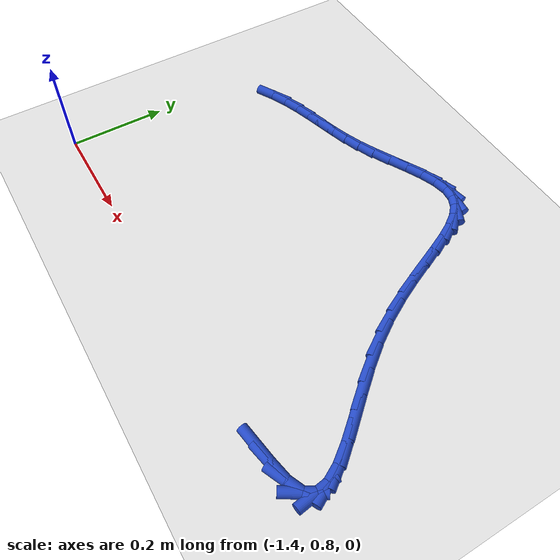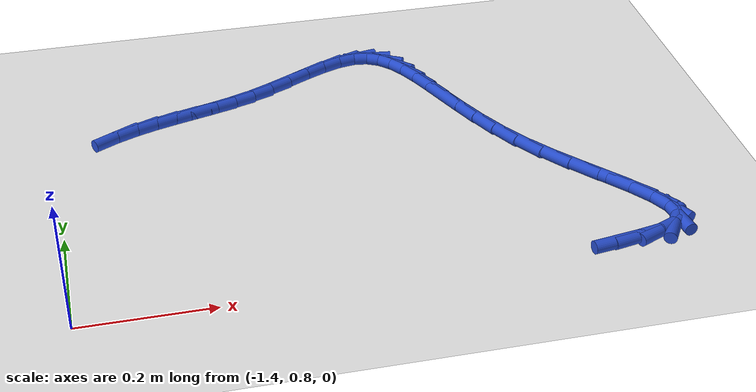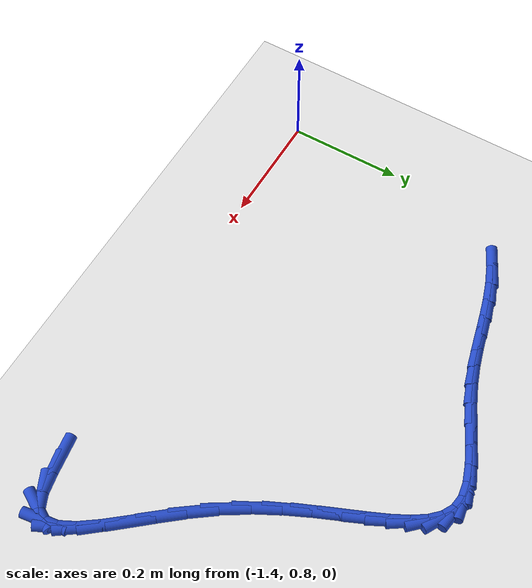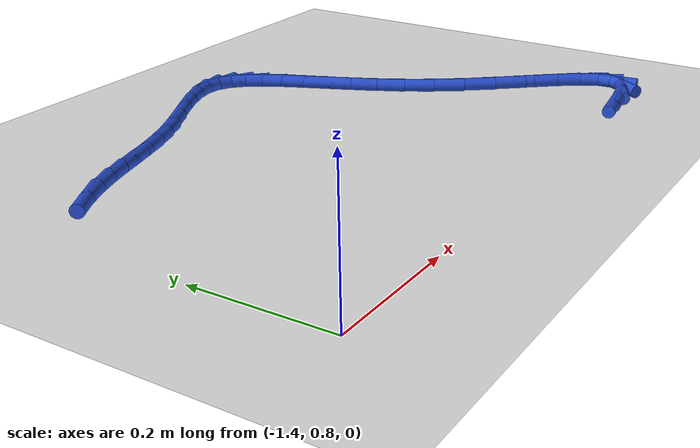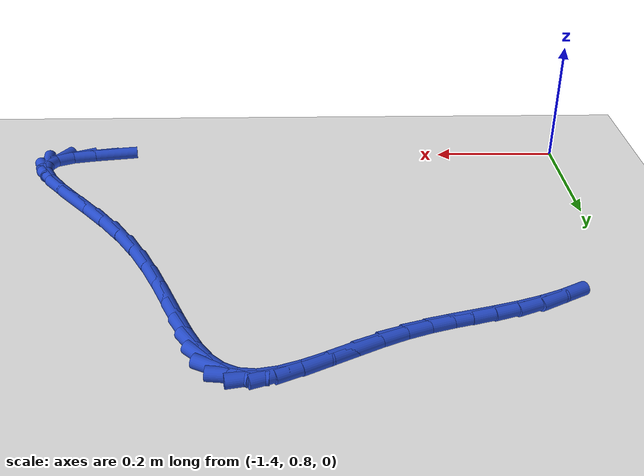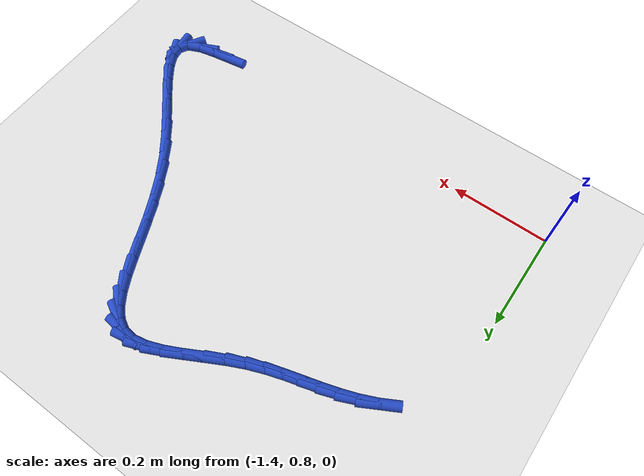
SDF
<sdf version="1.6">
 <world name="default">
  <model name="ground_plane">
   <static>1</static>
   <link name="link">
    <collision name="collision">
     <geometry><plane><normal>0 0 1</normal><size>100 100</size></plane></geometry>
     <surface><friction><ode><mu>100</mu><mu2>50</mu2></ode></friction></surface>
    </collision>
    <visual name="visual">
     <cast_shadows>0</cast_shadows>
     <geometry><plane><normal>0 0 1</normal><size>100 100</size></plane></geometry>
     <material>
      <script><uri>file://media/materials/scripts/gazebo.material</uri><name>Gazebo/WhiteGlow</name></script>
     </material>
    </visual>
   </link>
  </model>
  <model name="line">
   <link name="link_33">
    <pose>-0.6274975970471104 0.8076087048541392 0.01 0 1.57 0.15230203504884007</pose>
    <collision name="collision">
     <geometry><cylinder><radius>0.01</radius><length>0.08</length></cylinder></geometry>
    </collision>
    <visual name="visual">
     <material>
      <script><name>Gazebo/Blue</name><uri>file://media/materials/scripts/gazebo.material</uri></script>
     </material>
     <geometry><cylinder><radius>0.01</radius><length>0.08</length></cylinder></geometry>
    </visual>
   </link>
   <link name="link_34">
    <pose>-0.5961950611726069 0.8124133517301196 0.01 0 1.57 0.19830524384770448</pose>
    <collision name="collision">
     <geometry><cylinder><radius>0.01</radius><length>0.08</length></cylinder></geometry>
    </collision>
    <visual name="visual">
     <material>
      <script><name>Gazebo/Blue</name><uri>file://media/materials/scripts/gazebo.material</uri></script>
     </material>
     <geometry><cylinder><radius>0.01</radius><length>0.08</length></cylinder></geometry>
    </visual>
   </link>
   <link name="link_35">
    <pose>-0.5591647422391702 0.8198544552255956 0.01 0 1.57 0.42213728435637043</pose>
    <collision name="collision">
     <geometry><cylinder><radius>0.01</radius><length>0.08</length></cylinder></geometry>
    </collision>
    <visual name="visual">
     <material>
      <script><name>Gazebo/Blue</name><uri>file://media/materials/scripts/gazebo.material</uri></script>
     </material>
     <geometry><cylinder><radius>0.01</radius><length>0.08</length></cylinder></geometry>
    </visual>
   </link>
   <link name="link_36">
    <pose>-0.531856524955483 0.8321196274092257 0.01 0 1.57 1.0169095133444517</pose>
    <collision name="collision">
     <geometry><cylinder><radius>0.01</radius><length>0.08</length></cylinder></geometry>
    </collision>
    <visual name="visual">
     <material>
      <script><name>Gazebo/Blue</name><uri>file://media/materials/scripts/gazebo.material</uri></script>
     </material>
     <geometry><cylinder><radius>0.01</radius><length>0.08</length></cylinder></geometry>
    </visual>
   </link>
   <link name="link_37">
    <pose>-0.5207856084372138 0.8500202375938648 0.01 0 1.57 -1.4468187485999842</pose>
    <collision name="collision">
     <geometry><cylinder><radius>0.01</radius><length>0.08</length></cylinder></geometry>
    </collision>
    <visual name="visual">
     <material>
      <script><name>Gazebo/Blue</name><uri>file://media/materials/scripts/gazebo.material</uri></script>
     </material>
     <geometry><cylinder><radius>0.01</radius><length>0.08</length></cylinder></geometry>
    </visual>
   </link>
   <link name="link_38">
    <pose>-0.5236504663556029 0.8730095946627591 0.01 0 1.57 -1.095914336050709</pose>
    <collision name="collision">
     <geometry><cylinder><radius>0.01</radius><length>0.08</length></cylinder></geometry>
    </collision>
    <visual name="visual">
     <material>
      <script><name>Gazebo/Blue</name><uri>file://media/materials/scripts/gazebo.material</uri></script>
     </material>
     <geometry><cylinder><radius>0.01</radius><length>0.08</length></cylinder></geometry>
    </visual>
   </link>
   <link name="link_39">
    <pose>-0.5377753619319126 0.9004833670057931 0.01 0 1.57 -0.9439555136868737</pose>
    <collision name="collision">
     <geometry><cylinder><radius>0.01</radius><length>0.08</length></cylinder></geometry>
    </collision>
    <visual name="visual">
     <material>
      <script><name>Gazebo/Blue</name><uri>file://media/materials/scripts/gazebo.material</uri></script>
     </material>
     <geometry><cylinder><radius>0.01</radius><length>0.08</length></cylinder></geometry>
    </visual>
   </link>
   <link name="link_40">
    <pose>-0.5604845583874049 0.9318372230128507 0.01 0 1.57 -0.8801663626201262</pose>
    <collision name="collision">
     <geometry><cylinder><radius>0.01</radius><length>0.08</length></cylinder></geometry>
    </collision>
    <visual name="visual">
     <material>
      <script><name>Gazebo/Blue</name><uri>file://media/materials/scripts/gazebo.material</uri></script>
     </material>
     <geometry><cylinder><radius>0.01</radius><length>0.08</length></cylinder></geometry>
    </visual>
   </link>
   <link name="link_41">
    <pose>-0.5891023189433426 0.9664668310738164 0.01 0 1.57 -0.8640542533962889</pose>
    <collision name="collision">
     <geometry><cylinder><radius>0.01</radius><length>0.08</length></cylinder></geometry>
    </collision>
    <visual name="visual">
     <material>
      <script><name>Gazebo/Blue</name><uri>file://media/materials/scripts/gazebo.material</uri></script>
     </material>
     <geometry><cylinder><radius>0.01</radius><length>0.08</length></cylinder></geometry>
    </visual>
   </link>
   <link name="link_42">
    <pose>-0.6209529068209878 1.0037678595785737 0.01 0 1.57 -0.8820706175119707</pose>
    <collision name="collision">
     <geometry><cylinder><radius>0.01</radius><length>0.08</length></cylinder></geometry>
    </collision>
    <visual name="visual">
     <material>
      <script><name>Gazebo/Blue</name><uri>file://media/materials/scripts/gazebo.material</uri></script>
     </material>
     <geometry><cylinder><radius>0.01</radius><length>0.08</length></cylinder></geometry>
    </visual>
   </link>
   <link name="link_43">
    <pose>-0.6533605852416028 1.0431359769170072 0.01 0 1.57 -0.932552775636398</pose>
    <collision name="collision">
     <geometry><cylinder><radius>0.01</radius><length>0.08</length></cylinder></geometry>
    </collision>
    <visual name="visual">
     <material>
      <script><name>Gazebo/Blue</name><uri>file://media/materials/scripts/gazebo.material</uri></script>
     </material>
     <geometry><cylinder><radius>0.01</radius><length>0.08</length></cylinder></geometry>
    </visual>
   </link>
   <link name="link_44">
    <pose>-0.6836496318088999 1.0839668504136462 0.01 0 1.57 -1.0104647603875268</pose>
    <collision name="collision">
     <geometry><cylinder><radius>0.01</radius><length>0.08</length></cylinder></geometry>
    </collision>
    <visual name="visual">
     <material>
      <script><name>Gazebo/Blue</name><uri>file://media/materials/scripts/gazebo.material</uri></script>
     </material>
     <geometry><cylinder><radius>0.01</radius><length>0.08</length></cylinder></geometry>
    </visual>
   </link>
   <link name="link_45">
    <pose>-0.7097765928634499 1.1256093131634963 0.01 0 1.57 -1.0801747191157425</pose>
    <collision name="collision">
     <geometry><cylinder><radius>0.01</radius><length>0.08</length></cylinder></geometry>
    </collision>
    <visual name="visual">
     <material>
      <script><name>Gazebo/Blue</name><uri>file://media/materials/scripts/gazebo.material</uri></script>
     </material>
     <geometry><cylinder><radius>0.01</radius><length>0.08</length></cylinder></geometry>
    </visual>
   </link>
   <link name="link_46">
    <pose>-0.7320154467210744 1.1672405384360778 0.01 0 1.57 -1.1314485764993383</pose>
    <collision name="collision">
     <geometry><cylinder><radius>0.01</radius><length>0.08</length></cylinder></geometry>
    </collision>
    <visual name="visual">
     <material>
      <script><name>Gazebo/Blue</name><uri>file://media/materials/scripts/gazebo.material</uri></script>
     </material>
     <geometry><cylinder><radius>0.01</radius><length>0.08</length></cylinder></geometry>
    </visual>
   </link>
   <link name="link_47">
    <pose>-0.7511709789504042 1.2079983808579642 0.01 0 1.57 -1.162593641508173</pose>
    <collision name="collision">
     <geometry><cylinder><radius>0.01</radius><length>0.08</length></cylinder></geometry>
    </collision>
    <visual name="visual">
     <material>
      <script><name>Gazebo/Blue</name><uri>file://media/materials/scripts/gazebo.material</uri></script>
     </material>
     <geometry><cylinder><radius>0.01</radius><length>0.08</length></cylinder></geometry>
    </visual>
   </link>
   <link name="link_48">
    <pose>-0.7680479751200701 1.2470206950557308 0.01 0 1.57 -1.1707228555279066</pose>
    <collision name="collision">
     <geometry><cylinder><radius>0.01</radius><length>0.08</length></cylinder></geometry>
    </collision>
    <visual name="visual">
     <material>
      <script><name>Gazebo/Blue</name><uri>file://media/materials/scripts/gazebo.material</uri></script>
     </material>
     <geometry><cylinder><radius>0.01</radius><length>0.08</length></cylinder></geometry>
    </visual>
   </link>
   <link name="link_49">
    <pose>-0.7834512207987024 1.2834453356559512 0.01 0 1.57 -1.150465146954721</pose>
    <collision name="collision">
     <geometry><cylinder><radius>0.01</radius><length>0.08</length></cylinder></geometry>
    </collision>
    <visual name="visual">
     <material>
      <script><name>Gazebo/Blue</name><uri>file://media/materials/scripts/gazebo.material</uri></script>
     </material>
     <geometry><cylinder><radius>0.01</radius><length>0.08</length></cylinder></geometry>
    </visual>
   </link>
   <link name="link_50">
    <pose>-0.7981855015549317 1.3164101572851996 0.01 0 1.57 -1.091941891874106</pose>
    <collision name="collision">
     <geometry><cylinder><radius>0.01</radius><length>0.08</length></cylinder></geometry>
    </collision>
    <visual name="visual">
     <material>
      <script><name>Gazebo/Blue</name><uri>file://media/materials/scripts/gazebo.material</uri></script>
     </material>
     <geometry><cylinder><radius>0.01</radius><length>0.08</length></cylinder></geometry>
    </visual>
   </link>
   <link name="link_51">
    <pose>-0.813055602957389 1.345053014570051 0.01 0 1.57 -0.9777482804261196</pose>
    <collision name="collision">
     <geometry><cylinder><radius>0.01</radius><length>0.08</length></cylinder></geometry>
    </collision>
    <visual name="visual">
     <material>
      <script><name>Gazebo/Blue</name><uri>file://media/materials/scripts/gazebo.material</uri></script>
     </material>
     <geometry><cylinder><radius>0.01</radius><length>0.08</length></cylinder></geometry>
    </visual>
   </link>
   <link name="link_52">
    <pose>-0.8288663105747046 1.3685117621370786 0.01 0 1.57 -0.7812914461977593</pose>
    <collision name="collision">
     <geometry><cylinder><radius>0.01</radius><length>0.08</length></cylinder></geometry>
    </collision>
    <visual name="visual">
     <material>
      <script><name>Gazebo/Blue</name><uri>file://media/materials/scripts/gazebo.material</uri></script>
     </material>
     <geometry><cylinder><radius>0.01</radius><length>0.08</length></cylinder></geometry>
    </visual>
   </link>
   <link name="link_53">
    <pose>-0.8464224099755095 1.3859242546128578 0.01 0 1.57 -0.4814289942595881</pose>
    <collision name="collision">
     <geometry><cylinder><radius>0.01</radius><length>0.08</length></cylinder></geometry>
    </collision>
    <visual name="visual">
     <material>
      <script><name>Gazebo/Blue</name><uri>file://media/materials/scripts/gazebo.material</uri></script>
     </material>
     <geometry><cylinder><radius>0.01</radius><length>0.08</length></cylinder></geometry>
    </visual>
   </link>
   <link name="link_54">
    <pose>-0.8665286867284341 1.3964283466239622 0.01 0 1.57 -0.11603698721816989</pose>
    <collision name="collision">
     <geometry><cylinder><radius>0.01</radius><length>0.08</length></cylinder></geometry>
    </collision>
    <visual name="visual">
     <material>
      <script><name>Gazebo/Blue</name><uri>file://media/materials/scripts/gazebo.material</uri></script>
     </material>
     <geometry><cylinder><radius>0.01</radius><length>0.08</length></cylinder></geometry>
    </visual>
   </link>
   <link name="link_55">
    <pose>-0.889989327332415 1.399162933063862 0.01 0 1.57 0.18880216271722802</pose>
    <collision name="collision">
     <geometry><cylinder><radius>0.01</radius><length>0.08</length></cylinder></geometry>
    </collision>
    <visual name="visual">
     <material>
      <script><name>Gazebo/Blue</name><uri>file://media/materials/scripts/gazebo.material</uri></script>
     </material>
     <geometry><cylinder><radius>0.01</radius><length>0.08</length></cylinder></geometry>
    </visual>
   </link>
   <link name="link_56">
    <pose>-0.9172082284286742 1.3939620003850794 0.01 0 1.57 0.36009215054816684</pose>
    <collision name="collision">
     <geometry><cylinder><radius>0.01</radius><length>0.08</length></cylinder></geometry>
    </collision>
    <visual name="visual">
     <material>
      <script><name>Gazebo/Blue</name><uri>file://media/materials/scripts/gazebo.material</uri></script>
     </material>
     <geometry><cylinder><radius>0.01</radius><length>0.08</length></cylinder></geometry>
    </visual>
   </link>
   <link name="link_57">
    <pose>-0.947495694794874 1.382558525131339 0.01 0 1.57 0.4465359171212403</pose>
    <collision name="collision">
     <geometry><cylinder><radius>0.01</radius><length>0.08</length></cylinder></geometry>
    </collision>
    <visual name="visual">
     <material>
      <script><name>Gazebo/Blue</name><uri>file://media/materials/scripts/gazebo.material</uri></script>
     </material>
     <geometry><cylinder><radius>0.01</radius><length>0.08</length></cylinder></geometry>
    </visual>
   </link>
   <link name="link_58">
    <pose>-0.9799769818239045 1.3670068166577853 0.01 0 1.57 0.481135154921002</pose>
    <collision name="collision">
     <geometry><cylinder><radius>0.01</radius><length>0.08</length></cylinder></geometry>
    </collision>
    <visual name="visual">
     <material>
      <script><name>Gazebo/Blue</name><uri>file://media/materials/scripts/gazebo.material</uri></script>
     </material>
     <geometry><cylinder><radius>0.01</radius><length>0.08</length></cylinder></geometry>
    </visual>
   </link>
   <link name="link_59">
    <pose>-1.013777344908657 1.3493611843195648 0.01 0 1.57 0.47671102504164</pose>
    <collision name="collision">
     <geometry><cylinder><radius>0.01</radius><length>0.08</length></cylinder></geometry>
    </collision>
    <visual name="visual">
     <material>
      <script><name>Gazebo/Blue</name><uri>file://media/materials/scripts/gazebo.material</uri></script>
     </material>
     <geometry><cylinder><radius>0.01</radius><length>0.08</length></cylinder></geometry>
    </visual>
   </link>
   <link name="link_60">
    <pose>-1.0480220394420212 1.3316759374718221 0.01 0 1.57 0.43407448732028986</pose>
    <collision name="collision">
     <geometry><cylinder><radius>0.01</radius><length>0.08</length></cylinder></geometry>
    </collision>
    <visual name="visual">
     <material>
      <script><name>Gazebo/Blue</name><uri>file://media/materials/scripts/gazebo.material</uri></script>
     </material>
     <geometry><cylinder><radius>0.01</radius><length>0.08</length></cylinder></geometry>
    </visual>
   </link>
   <link name="link_61">
    <pose>-1.0818383477080278 1.315999989730625 0.01 0 1.57 0.364332486926034</pose>
    <collision name="collision">
     <geometry><cylinder><radius>0.01</radius><length>0.08</length></cylinder></geometry>
    </collision>
    <visual name="visual">
     <material>
      <script><name>Gazebo/Blue</name><uri>file://media/materials/scripts/gazebo.material</uri></script>
     </material>
     <geometry><cylinder><radius>0.01</radius><length>0.08</length></cylinder></geometry>
    </visual>
   </link>
   <link name="link_62">
    <pose>-1.1146965028481075 1.3034692933261747 0.01 0 1.57 0.30722305614795414</pose>
    <collision name="collision">
     <geometry><cylinder><radius>0.01</radius><length>0.08</length></cylinder></geometry>
    </collision>
    <visual name="visual">
     <material>
      <script><name>Gazebo/Blue</name><uri>file://media/materials/scripts/gazebo.material</uri></script>
     </material>
     <geometry><cylinder><radius>0.01</radius><length>0.08</length></cylinder></geometry>
    </visual>
   </link>
   <link name="link_63">
    <pose>-1.1467931468735109 1.2932860445753274 0.01 0 1.57 0.27374645443688667</pose>
    <collision name="collision">
     <geometry><cylinder><radius>0.01</radius><length>0.08</length></cylinder></geometry>
    </collision>
    <visual name="visual">
     <material>
      <script><name>Gazebo/Blue</name><uri>file://media/materials/scripts/gazebo.material</uri></script>
     </material>
     <geometry><cylinder><radius>0.01</radius><length>0.08</length></cylinder></geometry>
    </visual>
   </link>
   <link name="link_64">
    <pose>-1.1784174702246566 1.2844060688052383 0.01 0 1.57 0.267613499157372</pose>
    <collision name="collision">
     <geometry><cylinder><radius>0.01</radius><length>0.08</length></cylinder></geometry>
    </collision>
    <visual name="visual">
     <material>
      <script><name>Gazebo/Blue</name><uri>file://media/materials/scripts/gazebo.material</uri></script>
     </material>
     <geometry><cylinder><radius>0.01</radius><length>0.08</length></cylinder></geometry>
    </visual>
   </link>
   <link name="link_65">
    <pose>-1.2098586633419663 1.275785191343063 0.01 0 1.57 0.2897627665020422</pose>
    <collision name="collision">
     <geometry><cylinder><radius>0.01</radius><length>0.08</length></cylinder></geometry>
    </collision>
    <visual name="visual">
     <material>
      <script><name>Gazebo/Blue</name><uri>file://media/materials/scripts/gazebo.material</uri></script>
     </material>
     <geometry><cylinder><radius>0.01</radius><length>0.08</length></cylinder></geometry>
    </visual>
   </link>
   <link name="link_66">
    <pose>-1.2414059166658609 1.2663792375159564 0.01 0 1.57 0.3382170828029676</pose>
    <collision name="collision">
     <geometry><cylinder><radius>0.01</radius><length>0.08</length></cylinder></geometry>
    </collision>
    <visual name="visual">
     <material>
      <script><name>Gazebo/Blue</name><uri>file://media/materials/scripts/gazebo.material</uri></script>
     </material>
     <geometry><cylinder><radius>0.01</radius><length>0.08</length></cylinder></geometry>
    </visual>
   </link>
   <link name="link_67">
    <pose>-1.2733484206367605 1.2551440326510734 0.01 0 1.57 0.4081408761389661</pose>
    <collision name="collision">
     <geometry><cylinder><radius>0.01</radius><length>0.08</length></cylinder></geometry>
    </collision>
    <visual name="visual">
     <material>
      <script><name>Gazebo/Blue</name><uri>file://media/materials/scripts/gazebo.material</uri></script>
     </material>
     <geometry><cylinder><radius>0.01</radius><length>0.08</length></cylinder></geometry>
    </visual>
   </link>
   <link name="link_68">
    <pose>-1.3059753656950859 1.2410354020755698 0.01 0 1.57 0.49240842649528743</pose>
    <collision name="collision">
     <geometry><cylinder><radius>0.01</radius><length>0.08</length></cylinder></geometry>
    </collision>
    <visual name="visual">
     <material>
      <script><name>Gazebo/Blue</name><uri>file://media/materials/scripts/gazebo.material</uri></script>
     </material>
     <geometry><cylinder><radius>0.01</radius><length>0.08</length></cylinder></geometry>
    </visual>
   </link>
  </model>
 </world>
</sdf>
